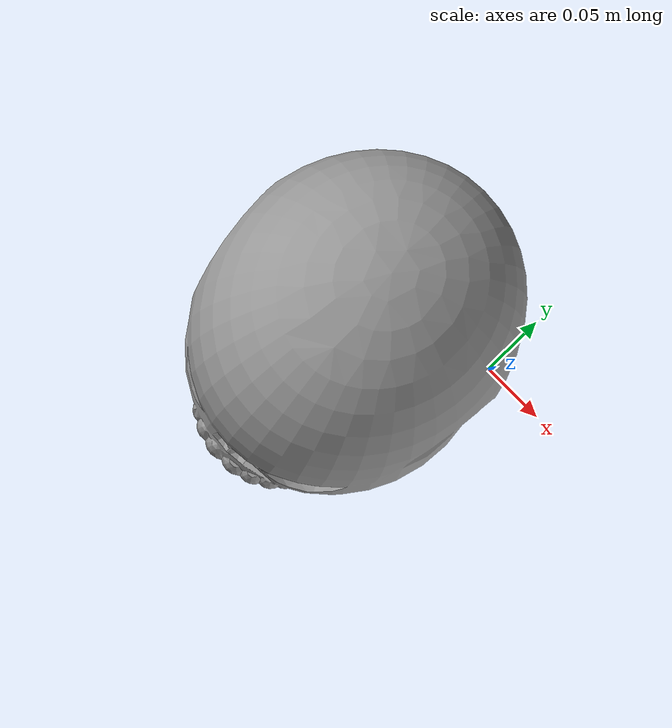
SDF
<?xml version="1.0" ?>
<sdf version="1.5">
  <model name="my1stmodel">
    <static>true</static>
    <link name="link">
      <collision name="collision">
        <geometry>
          <mesh>
            <uri>model://my1stmodel/meshes/something.stl</uri>
            <scale> 0.01 0.01 0.01 </scale>
          </mesh>
        </geometry>
        <surface>
          <friction>
            <ode>
              <mu>100</mu>
              <mu2>50</mu2>
            </ode>
          </friction>
        </surface>
      </collision>
      <visual name="visual">
        <geometry>
          <mesh>
            <uri>model://my1stmodel/meshes/something.stl</uri>
            <scale> 0.01 0.01 0.01 </scale>
          </mesh>
        </geometry>
        <material>
          <script>
            <uri>file://media/materials/scripts/gazebo.material</uri>
            <name>Gazebo/Grey</name>
          </script>
        </material>
      </visual>
    </link>
  </model>
</sdf>
